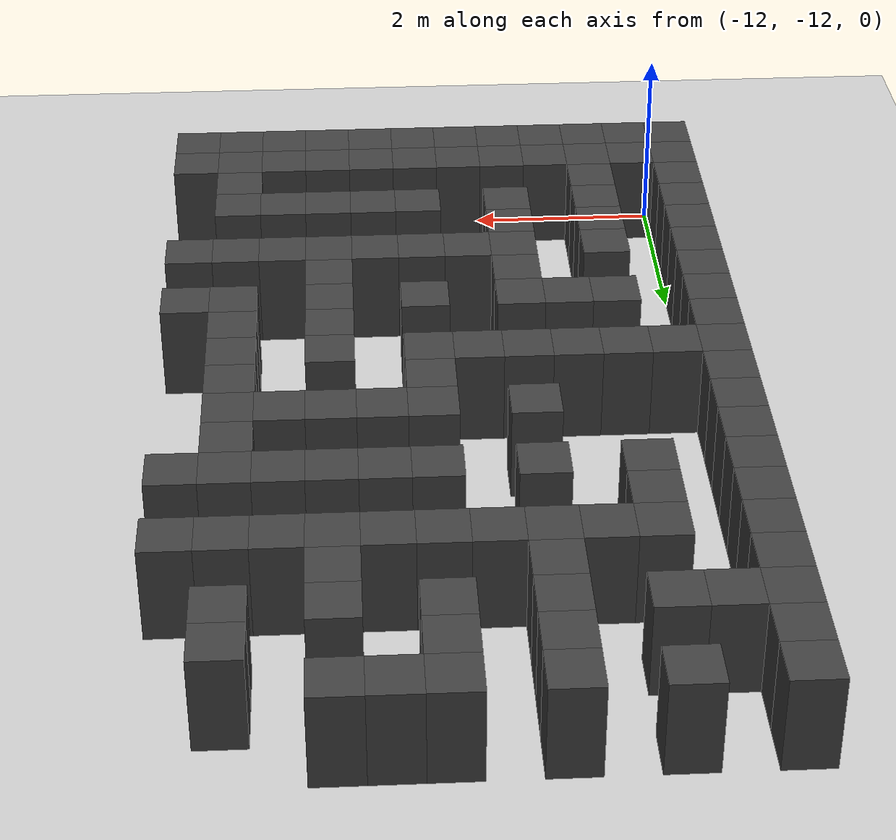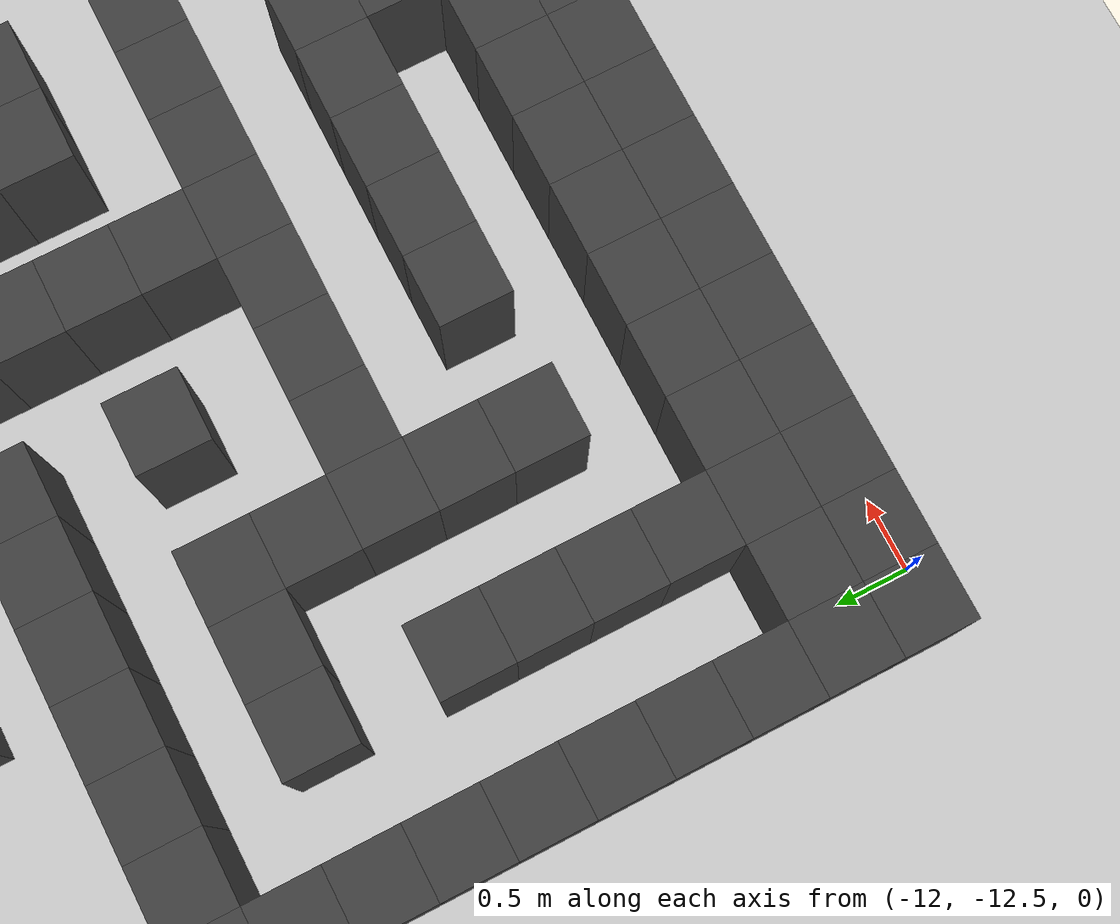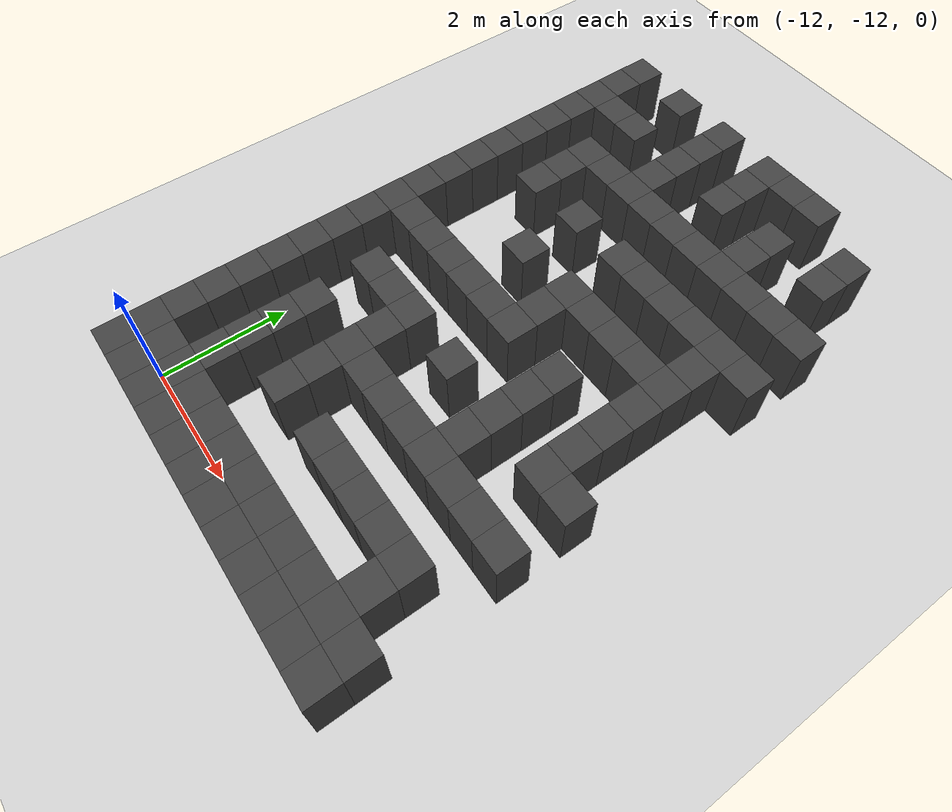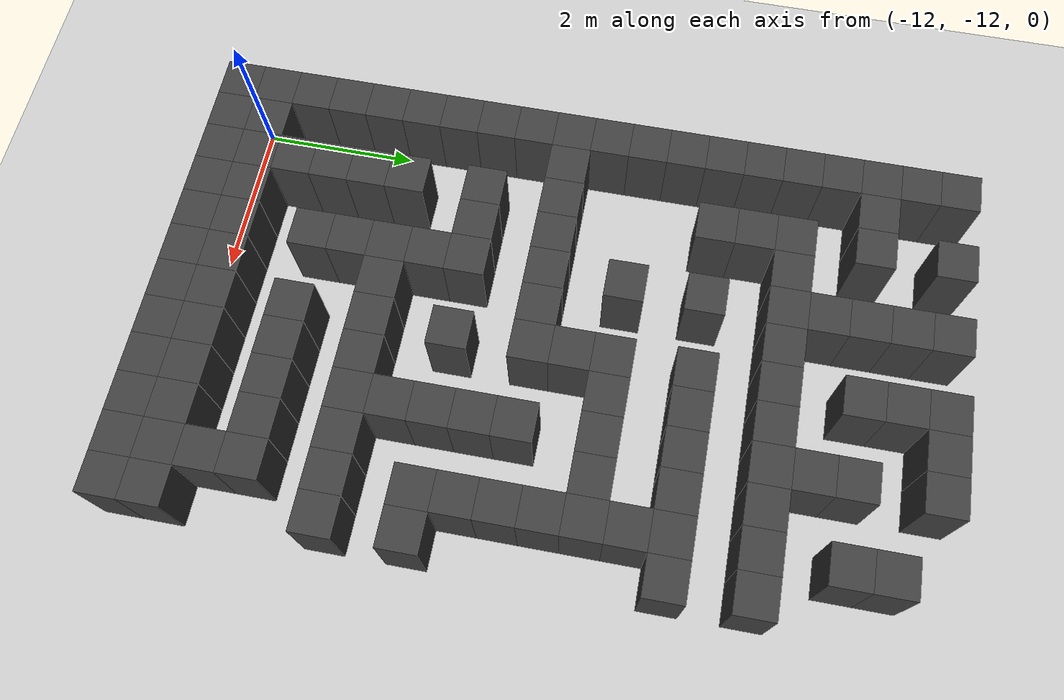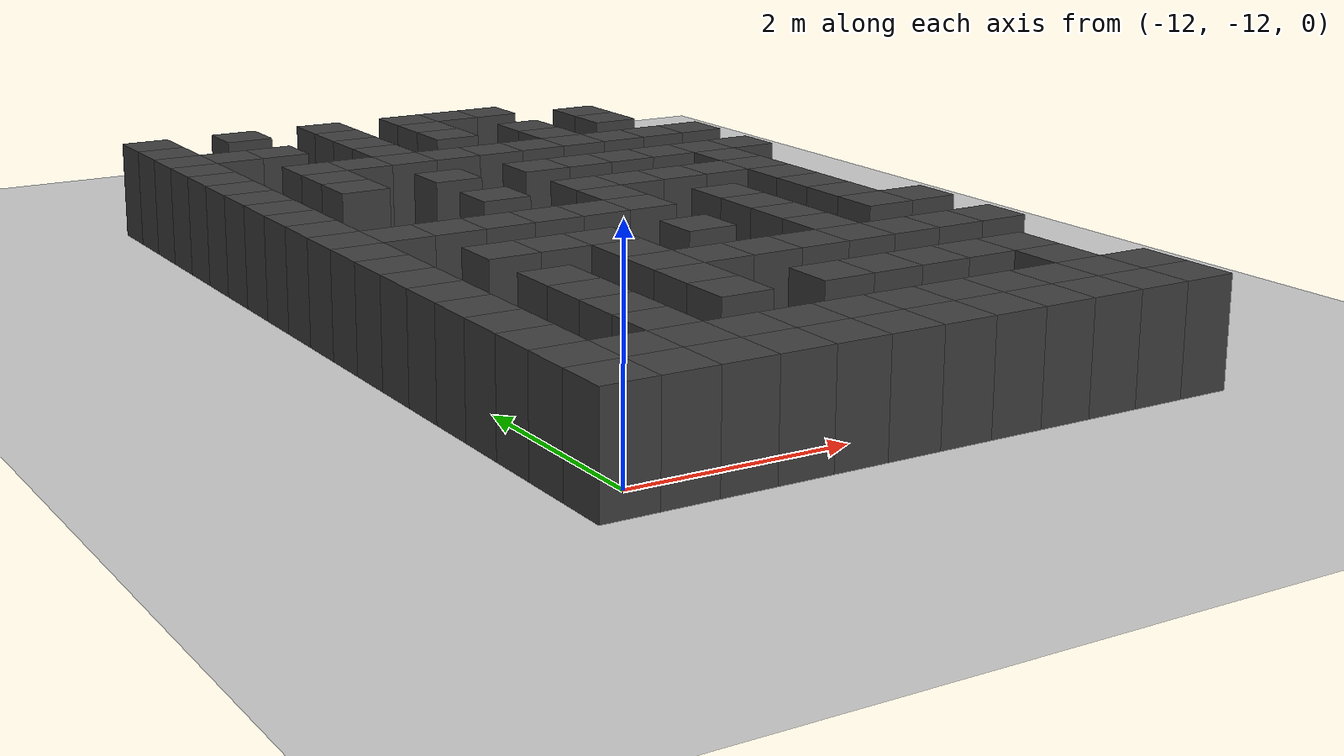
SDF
<sdf version="1.7">
 <world name="map_16884">
  <model name="ground_plane">
   <static>true</static>
   <link name="link">
    <collision name="collision">
     <geometry><plane><normal>0 0 1</normal><size>200 200</size></plane></geometry>
    </collision>
    <visual name="visual">
     <geometry><plane><normal>0 0 1</normal><size>200 200</size></plane></geometry>
     <material><ambient>0.8 0.8 0.8 1</ambient><diffuse>0.8 0.8 0.8 1</diffuse></material>
    </visual>
   </link>
  </model>
  <model name="maze_environment">
   <static>true</static>
   <link name="wall_724">
    <pose>-12.250 -2.750 0.500 0 0 0</pose>
    <collision name="col"><geometry><box><size>0.5 0.5 1.0</size></box></geometry></collision>
    <visual name="vis">
     <geometry><box><size>0.5 0.5 1.0</size></box></geometry>
     <material><ambient>0.15 0.15 0.15 1</ambient><diffuse>0.25 0.25 0.25 1</diffuse></material>
    </visual>
   </link>
   <link name="wall_725">
    <pose>-11.250 -2.750 0.500 0 0 0</pose>
    <collision name="col"><geometry><box><size>0.5 0.5 1.0</size></box></geometry></collision>
    <visual name="vis">
     <geometry><box><size>0.5 0.5 1.0</size></box></geometry>
     <material><ambient>0.15 0.15 0.15 1</ambient><diffuse>0.25 0.25 0.25 1</diffuse></material>
    </visual>
   </link>
   <link name="wall_726">
    <pose>-10.250 -2.750 0.500 0 0 0</pose>
    <collision name="col"><geometry><box><size>0.5 0.5 1.0</size></box></geometry></collision>
    <visual name="vis">
     <geometry><box><size>0.5 0.5 1.0</size></box></geometry>
     <material><ambient>0.15 0.15 0.15 1</ambient><diffuse>0.25 0.25 0.25 1</diffuse></material>
    </visual>
   </link>
   <link name="wall_727">
    <pose>-9.250 -2.750 0.500 0 0 0</pose>
    <collision name="col"><geometry><box><size>0.5 0.5 1.0</size></box></geometry></collision>
    <visual name="vis">
     <geometry><box><size>0.5 0.5 1.0</size></box></geometry>
     <material><ambient>0.15 0.15 0.15 1</ambient><diffuse>0.25 0.25 0.25 1</diffuse></material>
    </visual>
   </link>
   <link name="wall_728">
    <pose>-8.750 -2.750 0.500 0 0 0</pose>
    <collision name="col"><geometry><box><size>0.5 0.5 1.0</size></box></geometry></collision>
    <visual name="vis">
     <geometry><box><size>0.5 0.5 1.0</size></box></geometry>
     <material><ambient>0.15 0.15 0.15 1</ambient><diffuse>0.25 0.25 0.25 1</diffuse></material>
    </visual>
   </link>
   <link name="wall_729">
    <pose>-8.250 -2.750 0.500 0 0 0</pose>
    <collision name="col"><geometry><box><size>0.5 0.5 1.0</size></box></geometry></collision>
    <visual name="vis">
     <geometry><box><size>0.5 0.5 1.0</size></box></geometry>
     <material><ambient>0.15 0.15 0.15 1</ambient><diffuse>0.25 0.25 0.25 1</diffuse></material>
    </visual>
   </link>
   <link name="wall_760">
    <pose>-12.250 -3.250 0.500 0 0 0</pose>
    <collision name="col"><geometry><box><size>0.5 0.5 1.0</size></box></geometry></collision>
    <visual name="vis">
     <geometry><box><size>0.5 0.5 1.0</size></box></geometry>
     <material><ambient>0.15 0.15 0.15 1</ambient><diffuse>0.25 0.25 0.25 1</diffuse></material>
    </visual>
   </link>
   <link name="wall_761">
    <pose>-10.250 -3.250 0.500 0 0 0</pose>
    <collision name="col"><geometry><box><size>0.5 0.5 1.0</size></box></geometry></collision>
    <visual name="vis">
     <geometry><box><size>0.5 0.5 1.0</size></box></geometry>
     <material><ambient>0.15 0.15 0.15 1</ambient><diffuse>0.25 0.25 0.25 1</diffuse></material>
    </visual>
   </link>
   <link name="wall_762">
    <pose>-9.250 -3.250 0.500 0 0 0</pose>
    <collision name="col"><geometry><box><size>0.5 0.5 1.0</size></box></geometry></collision>
    <visual name="vis">
     <geometry><box><size>0.5 0.5 1.0</size></box></geometry>
     <material><ambient>0.15 0.15 0.15 1</ambient><diffuse>0.25 0.25 0.25 1</diffuse></material>
    </visual>
   </link>
   <link name="wall_763">
    <pose>-7.250 -3.250 0.500 0 0 0</pose>
    <collision name="col"><geometry><box><size>0.5 0.5 1.0</size></box></geometry></collision>
    <visual name="vis">
     <geometry><box><size>0.5 0.5 1.0</size></box></geometry>
     <material><ambient>0.15 0.15 0.15 1</ambient><diffuse>0.25 0.25 0.25 1</diffuse></material>
    </visual>
   </link>
   <link name="wall_774">
    <pose>-12.250 -3.750 0.500 0 0 0</pose>
    <collision name="col"><geometry><box><size>0.5 0.5 1.0</size></box></geometry></collision>
    <visual name="vis">
     <geometry><box><size>0.5 0.5 1.0</size></box></geometry>
     <material><ambient>0.15 0.15 0.15 1</ambient><diffuse>0.25 0.25 0.25 1</diffuse></material>
    </visual>
   </link>
   <link name="wall_775">
    <pose>-11.750 -3.750 0.500 0 0 0</pose>
    <collision name="col"><geometry><box><size>0.5 0.5 1.0</size></box></geometry></collision>
    <visual name="vis">
     <geometry><box><size>0.5 0.5 1.0</size></box></geometry>
     <material><ambient>0.15 0.15 0.15 1</ambient><diffuse>0.25 0.25 0.25 1</diffuse></material>
    </visual>
   </link>
   <link name="wall_776">
    <pose>-11.250 -3.750 0.500 0 0 0</pose>
    <collision name="col"><geometry><box><size>0.5 0.5 1.0</size></box></geometry></collision>
    <visual name="vis">
     <geometry><box><size>0.5 0.5 1.0</size></box></geometry>
     <material><ambient>0.15 0.15 0.15 1</ambient><diffuse>0.25 0.25 0.25 1</diffuse></material>
    </visual>
   </link>
   <link name="wall_777">
    <pose>-10.250 -3.750 0.500 0 0 0</pose>
    <collision name="col"><geometry><box><size>0.5 0.5 1.0</size></box></geometry></collision>
    <visual name="vis">
     <geometry><box><size>0.5 0.5 1.0</size></box></geometry>
     <material><ambient>0.15 0.15 0.15 1</ambient><diffuse>0.25 0.25 0.25 1</diffuse></material>
    </visual>
   </link>
   <link name="wall_778">
    <pose>-9.250 -3.750 0.500 0 0 0</pose>
    <collision name="col"><geometry><box><size>0.5 0.5 1.0</size></box></geometry></collision>
    <visual name="vis">
     <geometry><box><size>0.5 0.5 1.0</size></box></geometry>
     <material><ambient>0.15 0.15 0.15 1</ambient><diffuse>0.25 0.25 0.25 1</diffuse></material>
    </visual>
   </link>
   <link name="wall_779">
    <pose>-8.250 -3.750 0.500 0 0 0</pose>
    <collision name="col"><geometry><box><size>0.5 0.5 1.0</size></box></geometry></collision>
    <visual name="vis">
     <geometry><box><size>0.5 0.5 1.0</size></box></geometry>
     <material><ambient>0.15 0.15 0.15 1</ambient><diffuse>0.25 0.25 0.25 1</diffuse></material>
    </visual>
   </link>
   <link name="wall_780">
    <pose>-7.250 -3.750 0.500 0 0 0</pose>
    <collision name="col"><geometry><box><size>0.5 0.5 1.0</size></box></geometry></collision>
    <visual name="vis">
     <geometry><box><size>0.5 0.5 1.0</size></box></geometry>
     <material><ambient>0.15 0.15 0.15 1</ambient><diffuse>0.25 0.25 0.25 1</diffuse></material>
    </visual>
   </link>
   <link name="wall_807">
    <pose>-12.250 -4.250 0.500 0 0 0</pose>
    <collision name="col"><geometry><box><size>0.5 0.5 1.0</size></box></geometry></collision>
    <visual name="vis">
     <geometry><box><size>0.5 0.5 1.0</size></box></geometry>
     <material><ambient>0.15 0.15 0.15 1</ambient><diffuse>0.25 0.25 0.25 1</diffuse></material>
    </visual>
   </link>
   <link name="wall_808">
    <pose>-10.250 -4.250 0.500 0 0 0</pose>
    <collision name="col"><geometry><box><size>0.5 0.5 1.0</size></box></geometry></collision>
    <visual name="vis">
     <geometry><box><size>0.5 0.5 1.0</size></box></geometry>
     <material><ambient>0.15 0.15 0.15 1</ambient><diffuse>0.25 0.25 0.25 1</diffuse></material>
    </visual>
   </link>
   <link name="wall_809">
    <pose>-8.250 -4.250 0.500 0 0 0</pose>
    <collision name="col"><geometry><box><size>0.5 0.5 1.0</size></box></geometry></collision>
    <visual name="vis">
     <geometry><box><size>0.5 0.5 1.0</size></box></geometry>
     <material><ambient>0.15 0.15 0.15 1</ambient><diffuse>0.25 0.25 0.25 1</diffuse></material>
    </visual>
   </link>
   <link name="wall_819">
    <pose>-12.250 -4.750 0.500 0 0 0</pose>
    <collision name="col"><geometry><box><size>0.5 0.5 1.0</size></box></geometry></collision>
    <visual name="vis">
     <geometry><box><size>0.5 0.5 1.0</size></box></geometry>
     <material><ambient>0.15 0.15 0.15 1</ambient><diffuse>0.25 0.25 0.25 1</diffuse></material>
    </visual>
   </link>
   <link name="wall_820">
    <pose>-11.250 -4.750 0.500 0 0 0</pose>
    <collision name="col"><geometry><box><size>0.5 0.5 1.0</size></box></geometry></collision>
    <visual name="vis">
     <geometry><box><size>0.5 0.5 1.0</size></box></geometry>
     <material><ambient>0.15 0.15 0.15 1</ambient><diffuse>0.25 0.25 0.25 1</diffuse></material>
    </visual>
   </link>
   <link name="wall_821">
    <pose>-10.750 -4.750 0.500 0 0 0</pose>
    <collision name="col"><geometry><box><size>0.5 0.5 1.0</size></box></geometry></collision>
    <visual name="vis">
     <geometry><box><size>0.5 0.5 1.0</size></box></geometry>
     <material><ambient>0.15 0.15 0.15 1</ambient><diffuse>0.25 0.25 0.25 1</diffuse></material>
    </visual>
   </link>
   <link name="wall_822">
    <pose>-10.250 -4.750 0.500 0 0 0</pose>
    <collision name="col"><geometry><box><size>0.5 0.5 1.0</size></box></geometry></collision>
    <visual name="vis">
     <geometry><box><size>0.5 0.5 1.0</size></box></geometry>
     <material><ambient>0.15 0.15 0.15 1</ambient><diffuse>0.25 0.25 0.25 1</diffuse></material>
    </visual>
   </link>
   <link name="wall_823">
    <pose>-9.750 -4.750 0.500 0 0 0</pose>
    <collision name="col"><geometry><box><size>0.5 0.5 1.0</size></box></geometry></collision>
    <visual name="vis">
     <geometry><box><size>0.5 0.5 1.0</size></box></geometry>
     <material><ambient>0.15 0.15 0.15 1</ambient><diffuse>0.25 0.25 0.25 1</diffuse></material>
    </visual>
   </link>
   <link name="wall_824">
    <pose>-9.250 -4.750 0.500 0 0 0</pose>
    <collision name="col"><geometry><box><size>0.5 0.5 1.0</size></box></geometry></collision>
    <visual name="vis">
     <geometry><box><size>0.5 0.5 1.0</size></box></geometry>
     <material><ambient>0.15 0.15 0.15 1</ambient><diffuse>0.25 0.25 0.25 1</diffuse></material>
    </visual>
   </link>
   <link name="wall_825">
    <pose>-8.750 -4.750 0.500 0 0 0</pose>
    <collision name="col"><geometry><box><size>0.5 0.5 1.0</size></box></geometry></collision>
    <visual name="vis">
     <geometry><box><size>0.5 0.5 1.0</size></box></geometry>
     <material><ambient>0.15 0.15 0.15 1</ambient><diffuse>0.25 0.25 0.25 1</diffuse></material>
    </visual>
   </link>
   <link name="wall_826">
    <pose>-8.250 -4.750 0.500 0 0 0</pose>
    <collision name="col"><geometry><box><size>0.5 0.5 1.0</size></box></geometry></collision>
    <visual name="vis">
     <geometry><box><size>0.5 0.5 1.0</size></box></geometry>
     <material><ambient>0.15 0.15 0.15 1</ambient><diffuse>0.25 0.25 0.25 1</diffuse></material>
    </visual>
   </link>
   <link name="wall_827">
    <pose>-7.750 -4.750 0.500 0 0 0</pose>
    <collision name="col"><geometry><box><size>0.5 0.5 1.0</size></box></geometry></collision>
    <visual name="vis">
     <geometry><box><size>0.5 0.5 1.0</size></box></geometry>
     <material><ambient>0.15 0.15 0.15 1</ambient><diffuse>0.25 0.25 0.25 1</diffuse></material>
    </visual>
   </link>
   <link name="wall_828">
    <pose>-7.250 -4.750 0.500 0 0 0</pose>
    <collision name="col"><geometry><box><size>0.5 0.5 1.0</size></box></geometry></collision>
    <visual name="vis">
     <geometry><box><size>0.5 0.5 1.0</size></box></geometry>
     <material><ambient>0.15 0.15 0.15 1</ambient><diffuse>0.25 0.25 0.25 1</diffuse></material>
    </visual>
   </link>
   <link name="wall_829">
    <pose>-6.750 -4.750 0.500 0 0 0</pose>
    <collision name="col"><geometry><box><size>0.5 0.5 1.0</size></box></geometry></collision>
    <visual name="vis">
     <geometry><box><size>0.5 0.5 1.0</size></box></geometry>
     <material><ambient>0.15 0.15 0.15 1</ambient><diffuse>0.25 0.25 0.25 1</diffuse></material>
    </visual>
   </link>
   <link name="wall_860">
    <pose>-12.250 -5.250 0.500 0 0 0</pose>
    <collision name="col"><geometry><box><size>0.5 0.5 1.0</size></box></geometry></collision>
    <visual name="vis">
     <geometry><box><size>0.5 0.5 1.0</size></box></geometry>
     <material><ambient>0.15 0.15 0.15 1</ambient><diffuse>0.25 0.25 0.25 1</diffuse></material>
    </visual>
   </link>
   <link name="wall_861">
    <pose>-11.250 -5.250 0.500 0 0 0</pose>
    <collision name="col"><geometry><box><size>0.5 0.5 1.0</size></box></geometry></collision>
    <visual name="vis">
     <geometry><box><size>0.5 0.5 1.0</size></box></geometry>
     <material><ambient>0.15 0.15 0.15 1</ambient><diffuse>0.25 0.25 0.25 1</diffuse></material>
    </visual>
   </link>
   <link name="wall_871">
    <pose>-12.250 -5.750 0.500 0 0 0</pose>
    <collision name="col"><geometry><box><size>0.5 0.5 1.0</size></box></geometry></collision>
    <visual name="vis">
     <geometry><box><size>0.5 0.5 1.0</size></box></geometry>
     <material><ambient>0.15 0.15 0.15 1</ambient><diffuse>0.25 0.25 0.25 1</diffuse></material>
    </visual>
   </link>
   <link name="wall_872">
    <pose>-11.250 -5.750 0.500 0 0 0</pose>
    <collision name="col"><geometry><box><size>0.5 0.5 1.0</size></box></geometry></collision>
    <visual name="vis">
     <geometry><box><size>0.5 0.5 1.0</size></box></geometry>
     <material><ambient>0.15 0.15 0.15 1</ambient><diffuse>0.25 0.25 0.25 1</diffuse></material>
    </visual>
   </link>
   <link name="wall_873">
    <pose>-10.250 -5.750 0.500 0 0 0</pose>
    <collision name="col"><geometry><box><size>0.5 0.5 1.0</size></box></geometry></collision>
    <visual name="vis">
     <geometry><box><size>0.5 0.5 1.0</size></box></geometry>
     <material><ambient>0.15 0.15 0.15 1</ambient><diffuse>0.25 0.25 0.25 1</diffuse></material>
    </visual>
   </link>
   <link name="wall_874">
    <pose>-9.250 -5.750 0.500 0 0 0</pose>
    <collision name="col"><geometry><box><size>0.5 0.5 1.0</size></box></geometry></collision>
    <visual name="vis">
     <geometry><box><size>0.5 0.5 1.0</size></box></geometry>
     <material><ambient>0.15 0.15 0.15 1</ambient><diffuse>0.25 0.25 0.25 1</diffuse></material>
    </visual>
   </link>
   <link name="wall_875">
    <pose>-8.750 -5.750 0.500 0 0 0</pose>
    <collision name="col"><geometry><box><size>0.5 0.5 1.0</size></box></geometry></collision>
    <visual name="vis">
     <geometry><box><size>0.5 0.5 1.0</size></box></geometry>
     <material><ambient>0.15 0.15 0.15 1</ambient><diffuse>0.25 0.25 0.25 1</diffuse></material>
    </visual>
   </link>
   <link name="wall_876">
    <pose>-8.250 -5.750 0.500 0 0 0</pose>
    <collision name="col"><geometry><box><size>0.5 0.5 1.0</size></box></geometry></collision>
    <visual name="vis">
     <geometry><box><size>0.5 0.5 1.0</size></box></geometry>
     <material><ambient>0.15 0.15 0.15 1</ambient><diffuse>0.25 0.25 0.25 1</diffuse></material>
    </visual>
   </link>
   <link name="wall_877">
    <pose>-7.750 -5.750 0.500 0 0 0</pose>
    <collision name="col"><geometry><box><size>0.5 0.5 1.0</size></box></geometry></collision>
    <visual name="vis">
     <geometry><box><size>0.5 0.5 1.0</size></box></geometry>
     <material><ambient>0.15 0.15 0.15 1</ambient><diffuse>0.25 0.25 0.25 1</diffuse></material>
    </visual>
   </link>
   <link name="wall_878">
    <pose>-7.250 -5.750 0.500 0 0 0</pose>
    <collision name="col"><geometry><box><size>0.5 0.5 1.0</size></box></geometry></collision>
    <visual name="vis">
     <geometry><box><size>0.5 0.5 1.0</size></box></geometry>
     <material><ambient>0.15 0.15 0.15 1</ambient><diffuse>0.25 0.25 0.25 1</diffuse></material>
    </visual>
   </link>
   <link name="wall_879">
    <pose>-6.750 -5.750 0.500 0 0 0</pose>
    <collision name="col"><geometry><box><size>0.5 0.5 1.0</size></box></geometry></collision>
    <visual name="vis">
     <geometry><box><size>0.5 0.5 1.0</size></box></geometry>
     <material><ambient>0.15 0.15 0.15 1</ambient><diffuse>0.25 0.25 0.25 1</diffuse></material>
    </visual>
   </link>
   <link name="wall_906">
    <pose>-12.250 -6.250 0.500 0 0 0</pose>
    <collision name="col"><geometry><box><size>0.5 0.5 1.0</size></box></geometry></collision>
    <visual name="vis">
     <geometry><box><size>0.5 0.5 1.0</size></box></geometry>
     <material><ambient>0.15 0.15 0.15 1</ambient><diffuse>0.25 0.25 0.25 1</diffuse></material>
    </visual>
   </link>
   <link name="wall_907">
    <pose>-7.250 -6.250 0.500 0 0 0</pose>
    <collision name="col"><geometry><box><size>0.5 0.5 1.0</size></box></geometry></collision>
    <visual name="vis">
     <geometry><box><size>0.5 0.5 1.0</size></box></geometry>
     <material><ambient>0.15 0.15 0.15 1</ambient><diffuse>0.25 0.25 0.25 1</diffuse></material>
    </visual>
   </link>
   <link name="wall_921">
    <pose>-12.250 -6.750 0.500 0 0 0</pose>
    <collision name="col"><geometry><box><size>0.5 0.5 1.0</size></box></geometry></collision>
    <visual name="vis">
     <geometry><box><size>0.5 0.5 1.0</size></box></geometry>
     <material><ambient>0.15 0.15 0.15 1</ambient><diffuse>0.25 0.25 0.25 1</diffuse></material>
    </visual>
   </link>
   <link name="wall_922">
    <pose>-10.250 -6.750 0.500 0 0 0</pose>
    <collision name="col"><geometry><box><size>0.5 0.5 1.0</size></box></geometry></collision>
    <visual name="vis">
     <geometry><box><size>0.5 0.5 1.0</size></box></geometry>
     <material><ambient>0.15 0.15 0.15 1</ambient><diffuse>0.25 0.25 0.25 1</diffuse></material>
    </visual>
   </link>
   <link name="wall_923">
    <pose>-9.250 -6.750 0.500 0 0 0</pose>
    <collision name="col"><geometry><box><size>0.5 0.5 1.0</size></box></geometry></collision>
    <visual name="vis">
     <geometry><box><size>0.5 0.5 1.0</size></box></geometry>
     <material><ambient>0.15 0.15 0.15 1</ambient><diffuse>0.25 0.25 0.25 1</diffuse></material>
    </visual>
   </link>
   <link name="wall_924">
    <pose>-8.750 -6.750 0.500 0 0 0</pose>
    <collision name="col"><geometry><box><size>0.5 0.5 1.0</size></box></geometry></collision>
    <visual name="vis">
     <geometry><box><size>0.5 0.5 1.0</size></box></geometry>
     <material><ambient>0.15 0.15 0.15 1</ambient><diffuse>0.25 0.25 0.25 1</diffuse></material>
    </visual>
   </link>
   <link name="wall_925">
    <pose>-8.250 -6.750 0.500 0 0 0</pose>
    <collision name="col"><geometry><box><size>0.5 0.5 1.0</size></box></geometry></collision>
    <visual name="vis">
     <geometry><box><size>0.5 0.5 1.0</size></box></geometry>
     <material><ambient>0.15 0.15 0.15 1</ambient><diffuse>0.25 0.25 0.25 1</diffuse></material>
    </visual>
   </link>
   <link name="wall_926">
    <pose>-7.750 -6.750 0.500 0 0 0</pose>
    <collision name="col"><geometry><box><size>0.5 0.5 1.0</size></box></geometry></collision>
    <visual name="vis">
     <geometry><box><size>0.5 0.5 1.0</size></box></geometry>
     <material><ambient>0.15 0.15 0.15 1</ambient><diffuse>0.25 0.25 0.25 1</diffuse></material>
    </visual>
   </link>
   <link name="wall_927">
    <pose>-7.250 -6.750 0.500 0 0 0</pose>
    <collision name="col"><geometry><box><size>0.5 0.5 1.0</size></box></geometry></collision>
    <visual name="vis">
     <geometry><box><size>0.5 0.5 1.0</size></box></geometry>
     <material><ambient>0.15 0.15 0.15 1</ambient><diffuse>0.25 0.25 0.25 1</diffuse></material>
    </visual>
   </link>
   <link name="wall_953">
    <pose>-12.250 -7.250 0.500 0 0 0</pose>
    <collision name="col"><geometry><box><size>0.5 0.5 1.0</size></box></geometry></collision>
    <visual name="vis">
     <geometry><box><size>0.5 0.5 1.0</size></box></geometry>
     <material><ambient>0.15 0.15 0.15 1</ambient><diffuse>0.25 0.25 0.25 1</diffuse></material>
    </visual>
   </link>
   <link name="wall_954">
    <pose>-9.250 -7.250 0.500 0 0 0</pose>
    <collision name="col"><geometry><box><size>0.5 0.5 1.0</size></box></geometry></collision>
    <visual name="vis">
     <geometry><box><size>0.5 0.5 1.0</size></box></geometry>
     <material><ambient>0.15 0.15 0.15 1</ambient><diffuse>0.25 0.25 0.25 1</diffuse></material>
    </visual>
   </link>
   <link name="wall_955">
    <pose>-7.250 -7.250 0.500 0 0 0</pose>
    <collision name="col"><geometry><box><size>0.5 0.5 1.0</size></box></geometry></collision>
    <visual name="vis">
     <geometry><box><size>0.5 0.5 1.0</size></box></geometry>
     <material><ambient>0.15 0.15 0.15 1</ambient><diffuse>0.25 0.25 0.25 1</diffuse></material>
    </visual>
   </link>
   <link name="wall_967">
    <pose>-12.250 -7.750 0.500 0 0 0</pose>
    <collision name="col"><geometry><box><size>0.5 0.5 1.0</size></box></geometry></collision>
    <visual name="vis">
     <geometry><box><size>0.5 0.5 1.0</size></box></geometry>
     <material><ambient>0.15 0.15 0.15 1</ambient><diffuse>0.25 0.25 0.25 1</diffuse></material>
    </visual>
   </link>
   <link name="wall_968">
    <pose>-11.750 -7.750 0.500 0 0 0</pose>
    <collision name="col"><geometry><box><size>0.5 0.5 1.0</size></box></geometry></collision>
    <visual name="vis">
     <geometry><box><size>0.5 0.5 1.0</size></box></geometry>
     <material><ambient>0.15 0.15 0.15 1</ambient><diffuse>0.25 0.25 0.25 1</diffuse></material>
    </visual>
   </link>
   <link name="wall_969">
    <pose>-11.250 -7.750 0.500 0 0 0</pose>
    <collision name="col"><geometry><box><size>0.5 0.5 1.0</size></box></geometry></collision>
    <visual name="vis">
     <geometry><box><size>0.5 0.5 1.0</size></box></geometry>
     <material><ambient>0.15 0.15 0.15 1</ambient><diffuse>0.25 0.25 0.25 1</diffuse></material>
    </visual>
   </link>
   <link name="wall_970">
    <pose>-10.750 -7.750 0.500 0 0 0</pose>
    <collision name="col"><geometry><box><size>0.5 0.5 1.0</size></box></geometry></collision>
    <visual name="vis">
     <geometry><box><size>0.5 0.5 1.0</size></box></geometry>
     <material><ambient>0.15 0.15 0.15 1</ambient><diffuse>0.25 0.25 0.25 1</diffuse></material>
    </visual>
   </link>
   <link name="wall_971">
    <pose>-10.250 -7.750 0.500 0 0 0</pose>
    <collision name="col"><geometry><box><size>0.5 0.5 1.0</size></box></geometry></collision>
    <visual name="vis">
     <geometry><box><size>0.5 0.5 1.0</size></box></geometry>
     <material><ambient>0.15 0.15 0.15 1</ambient><diffuse>0.25 0.25 0.25 1</diffuse></material>
    </visual>
   </link>
   <link name="wall_972">
    <pose>-9.750 -7.750 0.500 0 0 0</pose>
    <collision name="col"><geometry><box><size>0.5 0.5 1.0</size></box></geometry></collision>
    <visual name="vis">
     <geometry><box><size>0.5 0.5 1.0</size></box></geometry>
     <material><ambient>0.15 0.15 0.15 1</ambient><diffuse>0.25 0.25 0.25 1</diffuse></material>
    </visual>
   </link>
   <link name="wall_973">
    <pose>-9.250 -7.750 0.500 0 0 0</pose>
    <collision name="col"><geometry><box><size>0.5 0.5 1.0</size></box></geometry></collision>
    <visual name="vis">
     <geometry><box><size>0.5 0.5 1.0</size></box></geometry>
     <material><ambient>0.15 0.15 0.15 1</ambient><diffuse>0.25 0.25 0.25 1</diffuse></material>
    </visual>
   </link>
   <link name="wall_974">
    <pose>-8.250 -7.750 0.500 0 0 0</pose>
    <collision name="col"><geometry><box><size>0.5 0.5 1.0</size></box></geometry></collision>
    <visual name="vis">
     <geometry><box><size>0.5 0.5 1.0</size></box></geometry>
     <material><ambient>0.15 0.15 0.15 1</ambient><diffuse>0.25 0.25 0.25 1</diffuse></material>
    </visual>
   </link>
   <link name="wall_975">
    <pose>-7.250 -7.750 0.500 0 0 0</pose>
    <collision name="col"><geometry><box><size>0.5 0.5 1.0</size></box></geometry></collision>
    <visual name="vis">
     <geometry><box><size>0.5 0.5 1.0</size></box></geometry>
     <material><ambient>0.15 0.15 0.15 1</ambient><diffuse>0.25 0.25 0.25 1</diffuse></material>
    </visual>
   </link>
   <link name="wall_1003">
    <pose>-12.250 -8.250 0.500 0 0 0</pose>
    <collision name="col"><geometry><box><size>0.5 0.5 1.0</size></box></geometry></collision>
    <visual name="vis">
     <geometry><box><size>0.5 0.5 1.0</size></box></geometry>
     <material><ambient>0.15 0.15 0.15 1</ambient><diffuse>0.25 0.25 0.25 1</diffuse></material>
    </visual>
   </link>
   <link name="wall_1004">
    <pose>-8.250 -8.250 0.500 0 0 0</pose>
    <collision name="col"><geometry><box><size>0.5 0.5 1.0</size></box></geometry></collision>
    <visual name="vis">
     <geometry><box><size>0.5 0.5 1.0</size></box></geometry>
     <material><ambient>0.15 0.15 0.15 1</ambient><diffuse>0.25 0.25 0.25 1</diffuse></material>
    </visual>
   </link>
   <link name="wall_1005">
    <pose>-7.250 -8.250 0.500 0 0 0</pose>
    <collision name="col"><geometry><box><size>0.5 0.5 1.0</size></box></geometry></collision>
    <visual name="vis">
     <geometry><box><size>0.5 0.5 1.0</size></box></geometry>
     <material><ambient>0.15 0.15 0.15 1</ambient><diffuse>0.25 0.25 0.25 1</diffuse></material>
    </visual>
   </link>
   <link name="wall_1015">
    <pose>-12.250 -8.750 0.500 0 0 0</pose>
    <collision name="col"><geometry><box><size>0.5 0.5 1.0</size></box></geometry></collision>
    <visual name="vis">
     <geometry><box><size>0.5 0.5 1.0</size></box></geometry>
     <material><ambient>0.15 0.15 0.15 1</ambient><diffuse>0.25 0.25 0.25 1</diffuse></material>
    </visual>
   </link>
   <link name="wall_1016">
    <pose>-11.250 -8.750 0.500 0 0 0</pose>
    <collision name="col"><geometry><box><size>0.5 0.5 1.0</size></box></geometry></collision>
    <visual name="vis">
     <geometry><box><size>0.5 0.5 1.0</size></box></geometry>
     <material><ambient>0.15 0.15 0.15 1</ambient><diffuse>0.25 0.25 0.25 1</diffuse></material>
    </visual>
   </link>
   <link name="wall_1017">
    <pose>-10.750 -8.750 0.500 0 0 0</pose>
    <collision name="col"><geometry><box><size>0.5 0.5 1.0</size></box></geometry></collision>
    <visual name="vis">
     <geometry><box><size>0.5 0.5 1.0</size></box></geometry>
     <material><ambient>0.15 0.15 0.15 1</ambient><diffuse>0.25 0.25 0.25 1</diffuse></material>
    </visual>
   </link>
   <link name="wall_1018">
    <pose>-10.250 -8.750 0.500 0 0 0</pose>
    <collision name="col"><geometry><box><size>0.5 0.5 1.0</size></box></geometry></collision>
    <visual name="vis">
     <geometry><box><size>0.5 0.5 1.0</size></box></geometry>
     <material><ambient>0.15 0.15 0.15 1</ambient><diffuse>0.25 0.25 0.25 1</diffuse></material>
    </visual>
   </link>
   <link name="wall_1019">
    <pose>-9.250 -8.750 0.500 0 0 0</pose>
    <collision name="col"><geometry><box><size>0.5 0.5 1.0</size></box></geometry></collision>
    <visual name="vis">
     <geometry><box><size>0.5 0.5 1.0</size></box></geometry>
     <material><ambient>0.15 0.15 0.15 1</ambient><diffuse>0.25 0.25 0.25 1</diffuse></material>
    </visual>
   </link>
   <link name="wall_1020">
    <pose>-8.250 -8.750 0.500 0 0 0</pose>
    <collision name="col"><geometry><box><size>0.5 0.5 1.0</size></box></geometry></collision>
    <visual name="vis">
     <geometry><box><size>0.5 0.5 1.0</size></box></geometry>
     <material><ambient>0.15 0.15 0.15 1</ambient><diffuse>0.25 0.25 0.25 1</diffuse></material>
    </visual>
   </link>
   <link name="wall_1021">
    <pose>-7.250 -8.750 0.500 0 0 0</pose>
    <collision name="col"><geometry><box><size>0.5 0.5 1.0</size></box></geometry></collision>
    <visual name="vis">
     <geometry><box><size>0.5 0.5 1.0</size></box></geometry>
     <material><ambient>0.15 0.15 0.15 1</ambient><diffuse>0.25 0.25 0.25 1</diffuse></material>
    </visual>
   </link>
   <link name="wall_1022">
    <pose>-6.750 -8.750 0.500 0 0 0</pose>
    <collision name="col"><geometry><box><size>0.5 0.5 1.0</size></box></geometry></collision>
    <visual name="vis">
     <geometry><box><size>0.5 0.5 1.0</size></box></geometry>
     <material><ambient>0.15 0.15 0.15 1</ambient><diffuse>0.25 0.25 0.25 1</diffuse></material>
    </visual>
   </link>
   <link name="wall_1047">
    <pose>-12.250 -9.250 0.500 0 0 0</pose>
    <collision name="col"><geometry><box><size>0.5 0.5 1.0</size></box></geometry></collision>
    <visual name="vis">
     <geometry><box><size>0.5 0.5 1.0</size></box></geometry>
     <material><ambient>0.15 0.15 0.15 1</ambient><diffuse>0.25 0.25 0.25 1</diffuse></material>
    </visual>
   </link>
   <link name="wall_1048">
    <pose>-10.250 -9.250 0.500 0 0 0</pose>
    <collision name="col"><geometry><box><size>0.5 0.5 1.0</size></box></geometry></collision>
    <visual name="vis">
     <geometry><box><size>0.5 0.5 1.0</size></box></geometry>
     <material><ambient>0.15 0.15 0.15 1</ambient><diffuse>0.25 0.25 0.25 1</diffuse></material>
    </visual>
   </link>
   <link name="wall_1049">
    <pose>-8.250 -9.250 0.500 0 0 0</pose>
    <collision name="col"><geometry><box><size>0.5 0.5 1.0</size></box></geometry></collision>
    <visual name="vis">
     <geometry><box><size>0.5 0.5 1.0</size></box></geometry>
     <material><ambient>0.15 0.15 0.15 1</ambient><diffuse>0.25 0.25 0.25 1</diffuse></material>
    </visual>
   </link>
   <link name="wall_1064">
    <pose>-12.250 -9.750 0.500 0 0 0</pose>
    <collision name="col"><geometry><box><size>0.5 0.5 1.0</size></box></geometry></collision>
    <visual name="vis">
     <geometry><box><size>0.5 0.5 1.0</size></box></geometry>
     <material><ambient>0.15 0.15 0.15 1</ambient><diffuse>0.25 0.25 0.25 1</diffuse></material>
    </visual>
   </link>
   <link name="wall_1065">
    <pose>-11.250 -9.750 0.500 0 0 0</pose>
    <collision name="col"><geometry><box><size>0.5 0.5 1.0</size></box></geometry></collision>
    <visual name="vis">
     <geometry><box><size>0.5 0.5 1.0</size></box></geometry>
     <material><ambient>0.15 0.15 0.15 1</ambient><diffuse>0.25 0.25 0.25 1</diffuse></material>
    </visual>
   </link>
   <link name="wall_1066">
    <pose>-10.250 -9.750 0.500 0 0 0</pose>
    <collision name="col"><geometry><box><size>0.5 0.5 1.0</size></box></geometry></collision>
    <visual name="vis">
     <geometry><box><size>0.5 0.5 1.0</size></box></geometry>
     <material><ambient>0.15 0.15 0.15 1</ambient><diffuse>0.25 0.25 0.25 1</diffuse></material>
    </visual>
   </link>
   <link name="wall_1067">
    <pose>-9.750 -9.750 0.500 0 0 0</pose>
    <collision name="col"><geometry><box><size>0.5 0.5 1.0</size></box></geometry></collision>
    <visual name="vis">
     <geometry><box><size>0.5 0.5 1.0</size></box></geometry>
     <material><ambient>0.15 0.15 0.15 1</ambient><diffuse>0.25 0.25 0.25 1</diffuse></material>
    </visual>
   </link>
   <link name="wall_1068">
    <pose>-9.250 -9.750 0.500 0 0 0</pose>
    <collision name="col"><geometry><box><size>0.5 0.5 1.0</size></box></geometry></collision>
    <visual name="vis">
     <geometry><box><size>0.5 0.5 1.0</size></box></geometry>
     <material><ambient>0.15 0.15 0.15 1</ambient><diffuse>0.25 0.25 0.25 1</diffuse></material>
    </visual>
   </link>
   <link name="wall_1069">
    <pose>-8.750 -9.750 0.500 0 0 0</pose>
    <collision name="col"><geometry><box><size>0.5 0.5 1.0</size></box></geometry></collision>
    <visual name="vis">
     <geometry><box><size>0.5 0.5 1.0</size></box></geometry>
     <material><ambient>0.15 0.15 0.15 1</ambient><diffuse>0.25 0.25 0.25 1</diffuse></material>
    </visual>
   </link>
   <link name="wall_1070">
    <pose>-8.250 -9.750 0.500 0 0 0</pose>
    <collision name="col"><geometry><box><size>0.5 0.5 1.0</size></box></geometry></collision>
    <visual name="vis">
     <geometry><box><size>0.5 0.5 1.0</size></box></geometry>
     <material><ambient>0.15 0.15 0.15 1</ambient><diffuse>0.25 0.25 0.25 1</diffuse></material>
    </visual>
   </link>
   <link name="wall_1071">
    <pose>-7.750 -9.750 0.500 0 0 0</pose>
    <collision name="col"><geometry><box><size>0.5 0.5 1.0</size></box></geometry></collision>
    <visual name="vis">
     <geometry><box><size>0.5 0.5 1.0</size></box></geometry>
     <material><ambient>0.15 0.15 0.15 1</ambient><diffuse>0.25 0.25 0.25 1</diffuse></material>
    </visual>
   </link>
   <link name="wall_1072">
    <pose>-7.250 -9.750 0.500 0 0 0</pose>
    <collision name="col"><geometry><box><size>0.5 0.5 1.0</size></box></geometry></collision>
    <visual name="vis">
     <geometry><box><size>0.5 0.5 1.0</size></box></geometry>
     <material><ambient>0.15 0.15 0.15 1</ambient><diffuse>0.25 0.25 0.25 1</diffuse></material>
    </visual>
   </link>
   <link name="wall_1073">
    <pose>-6.750 -9.750 0.500 0 0 0</pose>
    <collision name="col"><geometry><box><size>0.5 0.5 1.0</size></box></geometry></collision>
    <visual name="vis">
     <geometry><box><size>0.5 0.5 1.0</size></box></geometry>
     <material><ambient>0.15 0.15 0.15 1</ambient><diffuse>0.25 0.25 0.25 1</diffuse></material>
    </visual>
   </link>
   <link name="wall_1100">
    <pose>-12.250 -10.250 0.500 0 0 0</pose>
    <collision name="col"><geometry><box><size>0.5 0.5 1.0</size></box></geometry></collision>
    <visual name="vis">
     <geometry><box><size>0.5 0.5 1.0</size></box></geometry>
     <material><ambient>0.15 0.15 0.15 1</ambient><diffuse>0.25 0.25 0.25 1</diffuse></material>
    </visual>
   </link>
   <link name="wall_1101">
    <pose>-11.250 -10.250 0.500 0 0 0</pose>
    <collision name="col"><geometry><box><size>0.5 0.5 1.0</size></box></geometry></collision>
    <visual name="vis">
     <geometry><box><size>0.5 0.5 1.0</size></box></geometry>
     <material><ambient>0.15 0.15 0.15 1</ambient><diffuse>0.25 0.25 0.25 1</diffuse></material>
    </visual>
   </link>
   <link name="wall_1102">
    <pose>-10.250 -10.250 0.500 0 0 0</pose>
    <collision name="col"><geometry><box><size>0.5 0.5 1.0</size></box></geometry></collision>
    <visual name="vis">
     <geometry><box><size>0.5 0.5 1.0</size></box></geometry>
     <material><ambient>0.15 0.15 0.15 1</ambient><diffuse>0.25 0.25 0.25 1</diffuse></material>
    </visual>
   </link>
   <link name="wall_1113">
    <pose>-12.250 -10.750 0.500 0 0 0</pose>
    <collision name="col"><geometry><box><size>0.5 0.5 1.0</size></box></geometry></collision>
    <visual name="vis">
     <geometry><box><size>0.5 0.5 1.0</size></box></geometry>
     <material><ambient>0.15 0.15 0.15 1</ambient><diffuse>0.25 0.25 0.25 1</diffuse></material>
    </visual>
   </link>
   <link name="wall_1114">
    <pose>-11.250 -10.750 0.500 0 0 0</pose>
    <collision name="col"><geometry><box><size>0.5 0.5 1.0</size></box></geometry></collision>
    <visual name="vis">
     <geometry><box><size>0.5 0.5 1.0</size></box></geometry>
     <material><ambient>0.15 0.15 0.15 1</ambient><diffuse>0.25 0.25 0.25 1</diffuse></material>
    </visual>
   </link>
   <link name="wall_1115">
    <pose>-10.250 -10.750 0.500 0 0 0</pose>
    <collision name="col"><geometry><box><size>0.5 0.5 1.0</size></box></geometry></collision>
    <visual name="vis">
     <geometry><box><size>0.5 0.5 1.0</size></box></geometry>
     <material><ambient>0.15 0.15 0.15 1</ambient><diffuse>0.25 0.25 0.25 1</diffuse></material>
    </visual>
   </link>
   <link name="wall_1116">
    <pose>-9.250 -10.750 0.500 0 0 0</pose>
    <collision name="col"><geometry><box><size>0.5 0.5 1.0</size></box></geometry></collision>
    <visual name="vis">
     <geometry><box><size>0.5 0.5 1.0</size></box></geometry>
     <material><ambient>0.15 0.15 0.15 1</ambient><diffuse>0.25 0.25 0.25 1</diffuse></material>
    </visual>
   </link>
   <link name="wall_1117">
    <pose>-8.750 -10.750 0.500 0 0 0</pose>
    <collision name="col"><geometry><box><size>0.5 0.5 1.0</size></box></geometry></collision>
    <visual name="vis">
     <geometry><box><size>0.5 0.5 1.0</size></box></geometry>
     <material><ambient>0.15 0.15 0.15 1</ambient><diffuse>0.25 0.25 0.25 1</diffuse></material>
    </visual>
   </link>
   <link name="wall_1118">
    <pose>-8.250 -10.750 0.500 0 0 0</pose>
    <collision name="col"><geometry><box><size>0.5 0.5 1.0</size></box></geometry></collision>
    <visual name="vis">
     <geometry><box><size>0.5 0.5 1.0</size></box></geometry>
     <material><ambient>0.15 0.15 0.15 1</ambient><diffuse>0.25 0.25 0.25 1</diffuse></material>
    </visual>
   </link>
   <link name="wall_1119">
    <pose>-7.750 -10.750 0.500 0 0 0</pose>
    <collision name="col"><geometry><box><size>0.5 0.5 1.0</size></box></geometry></collision>
    <visual name="vis">
     <geometry><box><size>0.5 0.5 1.0</size></box></geometry>
     <material><ambient>0.15 0.15 0.15 1</ambient><diffuse>0.25 0.25 0.25 1</diffuse></material>
    </visual>
   </link>
   <link name="wall_1120">
    <pose>-7.250 -10.750 0.500 0 0 0</pose>
    <collision name="col"><geometry><box><size>0.5 0.5 1.0</size></box></geometry></collision>
    <visual name="vis">
     <geometry><box><size>0.5 0.5 1.0</size></box></geometry>
     <material><ambient>0.15 0.15 0.15 1</ambient><diffuse>0.25 0.25 0.25 1</diffuse></material>
    </visual>
   </link>
   <link name="wall_1148">
    <pose>-12.250 -11.250 0.500 0 0 0</pose>
    <collision name="col"><geometry><box><size>0.5 0.5 1.0</size></box></geometry></collision>
    <visual name="vis">
     <geometry><box><size>0.5 0.5 1.0</size></box></geometry>
     <material><ambient>0.15 0.15 0.15 1</ambient><diffuse>0.25 0.25 0.25 1</diffuse></material>
    </visual>
   </link>
   <link name="wall_1149">
    <pose>-11.250 -11.250 0.500 0 0 0</pose>
    <collision name="col"><geometry><box><size>0.5 0.5 1.0</size></box></geometry></collision>
    <visual name="vis">
     <geometry><box><size>0.5 0.5 1.0</size></box></geometry>
     <material><ambient>0.15 0.15 0.15 1</ambient><diffuse>0.25 0.25 0.25 1</diffuse></material>
    </visual>
   </link>
   <link name="wall_1150">
    <pose>-7.250 -11.250 0.500 0 0 0</pose>
    <collision name="col"><geometry><box><size>0.5 0.5 1.0</size></box></geometry></collision>
    <visual name="vis">
     <geometry><box><size>0.5 0.5 1.0</size></box></geometry>
     <material><ambient>0.15 0.15 0.15 1</ambient><diffuse>0.25 0.25 0.25 1</diffuse></material>
    </visual>
   </link>
   <link name="wall_1153">
    <pose>-12.250 -11.750 0.500 0 0 0</pose>
    <collision name="col"><geometry><box><size>0.5 0.5 1.0</size></box></geometry></collision>
    <visual name="vis">
     <geometry><box><size>0.5 0.5 1.0</size></box></geometry>
     <material><ambient>0.15 0.15 0.15 1</ambient><diffuse>0.25 0.25 0.25 1</diffuse></material>
    </visual>
   </link>
   <link name="wall_1154">
    <pose>-11.750 -11.750 0.500 0 0 0</pose>
    <collision name="col"><geometry><box><size>0.5 0.5 1.0</size></box></geometry></collision>
    <visual name="vis">
     <geometry><box><size>0.5 0.5 1.0</size></box></geometry>
     <material><ambient>0.15 0.15 0.15 1</ambient><diffuse>0.25 0.25 0.25 1</diffuse></material>
    </visual>
   </link>
   <link name="wall_1155">
    <pose>-11.250 -11.750 0.500 0 0 0</pose>
    <collision name="col"><geometry><box><size>0.5 0.5 1.0</size></box></geometry></collision>
    <visual name="vis">
     <geometry><box><size>0.5 0.5 1.0</size></box></geometry>
     <material><ambient>0.15 0.15 0.15 1</ambient><diffuse>0.25 0.25 0.25 1</diffuse></material>
    </visual>
   </link>
   <link name="wall_1156">
    <pose>-10.750 -11.750 0.500 0 0 0</pose>
    <collision name="col"><geometry><box><size>0.5 0.5 1.0</size></box></geometry></collision>
    <visual name="vis">
     <geometry><box><size>0.5 0.5 1.0</size></box></geometry>
     <material><ambient>0.15 0.15 0.15 1</ambient><diffuse>0.25 0.25 0.25 1</diffuse></material>
    </visual>
   </link>
   <link name="wall_1157">
    <pose>-10.250 -11.750 0.500 0 0 0</pose>
    <collision name="col"><geometry><box><size>0.5 0.5 1.0</size></box></geometry></collision>
    <visual name="vis">
     <geometry><box><size>0.5 0.5 1.0</size></box></geometry>
     <material><ambient>0.15 0.15 0.15 1</ambient><diffuse>0.25 0.25 0.25 1</diffuse></material>
    </visual>
   </link>
   <link name="wall_1158">
    <pose>-9.750 -11.750 0.500 0 0 0</pose>
    <collision name="col"><geometry><box><size>0.5 0.5 1.0</size></box></geometry></collision>
    <visual name="vis">
     <geometry><box><size>0.5 0.5 1.0</size></box></geometry>
     <material><ambient>0.15 0.15 0.15 1</ambient><diffuse>0.25 0.25 0.25 1</diffuse></material>
    </visual>
   </link>
   <link name="wall_1159">
    <pose>-9.250 -11.750 0.500 0 0 0</pose>
    <collision name="col"><geometry><box><size>0.5 0.5 1.0</size></box></geometry></collision>
    <visual name="vis">
     <geometry><box><size>0.5 0.5 1.0</size></box></geometry>
     <material><ambient>0.15 0.15 0.15 1</ambient><diffuse>0.25 0.25 0.25 1</diffuse></material>
    </visual>
   </link>
   <link name="wall_1160">
    <pose>-8.750 -11.750 0.500 0 0 0</pose>
    <collision name="col"><geometry><box><size>0.5 0.5 1.0</size></box></geometry></collision>
    <visual name="vis">
     <geometry><box><size>0.5 0.5 1.0</size></box></geometry>
     <material><ambient>0.15 0.15 0.15 1</ambient><diffuse>0.25 0.25 0.25 1</diffuse></material>
    </visual>
   </link>
   <link name="wall_1161">
    <pose>-8.250 -11.750 0.500 0 0 0</pose>
    <collision name="col"><geometry><box><size>0.5 0.5 1.0</size></box></geometry></collision>
    <visual name="vis">
     <geometry><box><size>0.5 0.5 1.0</size></box></geometry>
     <material><ambient>0.15 0.15 0.15 1</ambient><diffuse>0.25 0.25 0.25 1</diffuse></material>
    </visual>
   </link>
   <link name="wall_1162">
    <pose>-7.750 -11.750 0.500 0 0 0</pose>
    <collision name="col"><geometry><box><size>0.5 0.5 1.0</size></box></geometry></collision>
    <visual name="vis">
     <geometry><box><size>0.5 0.5 1.0</size></box></geometry>
     <material><ambient>0.15 0.15 0.15 1</ambient><diffuse>0.25 0.25 0.25 1</diffuse></material>
    </visual>
   </link>
   <link name="wall_1163">
    <pose>-7.250 -11.750 0.500 0 0 0</pose>
    <collision name="col"><geometry><box><size>0.5 0.5 1.0</size></box></geometry></collision>
    <visual name="vis">
     <geometry><box><size>0.5 0.5 1.0</size></box></geometry>
     <material><ambient>0.15 0.15 0.15 1</ambient><diffuse>0.25 0.25 0.25 1</diffuse></material>
    </visual>
   </link>
   <link name="wall_1164">
    <pose>-6.750 -11.750 0.500 0 0 0</pose>
    <collision name="col"><geometry><box><size>0.5 0.5 1.0</size></box></geometry></collision>
    <visual name="vis">
     <geometry><box><size>0.5 0.5 1.0</size></box></geometry>
     <material><ambient>0.15 0.15 0.15 1</ambient><diffuse>0.25 0.25 0.25 1</diffuse></material>
    </visual>
   </link>
   <link name="wall_1201">
    <pose>-12.250 -12.250 0.500 0 0 0</pose>
    <collision name="col"><geometry><box><size>0.5 0.5 1.0</size></box></geometry></collision>
    <visual name="vis">
     <geometry><box><size>0.5 0.5 1.0</size></box></geometry>
     <material><ambient>0.15 0.15 0.15 1</ambient><diffuse>0.25 0.25 0.25 1</diffuse></material>
    </visual>
   </link>
   <link name="wall_1202">
    <pose>-11.750 -12.250 0.500 0 0 0</pose>
    <collision name="col"><geometry><box><size>0.5 0.5 1.0</size></box></geometry></collision>
    <visual name="vis">
     <geometry><box><size>0.5 0.5 1.0</size></box></geometry>
     <material><ambient>0.15 0.15 0.15 1</ambient><diffuse>0.25 0.25 0.25 1</diffuse></material>
    </visual>
   </link>
   <link name="wall_1203">
    <pose>-11.250 -12.250 0.500 0 0 0</pose>
    <collision name="col"><geometry><box><size>0.5 0.5 1.0</size></box></geometry></collision>
    <visual name="vis">
     <geometry><box><size>0.5 0.5 1.0</size></box></geometry>
     <material><ambient>0.15 0.15 0.15 1</ambient><diffuse>0.25 0.25 0.25 1</diffuse></material>
    </visual>
   </link>
   <link name="wall_1204">
    <pose>-10.750 -12.250 0.500 0 0 0</pose>
    <collision name="col"><geometry><box><size>0.5 0.5 1.0</size></box></geometry></collision>
    <visual name="vis">
     <geometry><box><size>0.5 0.5 1.0</size></box></geometry>
     <material><ambient>0.15 0.15 0.15 1</ambient><diffuse>0.25 0.25 0.25 1</diffuse></material>
    </visual>
   </link>
   <link name="wall_1205">
    <pose>-10.250 -12.250 0.500 0 0 0</pose>
    <collision name="col"><geometry><box><size>0.5 0.5 1.0</size></box></geometry></collision>
    <visual name="vis">
     <geometry><box><size>0.5 0.5 1.0</size></box></geometry>
     <material><ambient>0.15 0.15 0.15 1</ambient><diffuse>0.25 0.25 0.25 1</diffuse></material>
    </visual>
   </link>
   <link name="wall_1206">
    <pose>-9.750 -12.250 0.500 0 0 0</pose>
    <collision name="col"><geometry><box><size>0.5 0.5 1.0</size></box></geometry></collision>
    <visual name="vis">
     <geometry><box><size>0.5 0.5 1.0</size></box></geometry>
     <material><ambient>0.15 0.15 0.15 1</ambient><diffuse>0.25 0.25 0.25 1</diffuse></material>
    </visual>
   </link>
   <link name="wall_1207">
    <pose>-9.250 -12.250 0.500 0 0 0</pose>
    <collision name="col"><geometry><box><size>0.5 0.5 1.0</size></box></geometry></collision>
    <visual name="vis">
     <geometry><box><size>0.5 0.5 1.0</size></box></geometry>
     <material><ambient>0.15 0.15 0.15 1</ambient><diffuse>0.25 0.25 0.25 1</diffuse></material>
    </visual>
   </link>
   <link name="wall_1208">
    <pose>-8.750 -12.250 0.500 0 0 0</pose>
    <collision name="col"><geometry><box><size>0.5 0.5 1.0</size></box></geometry></collision>
    <visual name="vis">
     <geometry><box><size>0.5 0.5 1.0</size></box></geometry>
     <material><ambient>0.15 0.15 0.15 1</ambient><diffuse>0.25 0.25 0.25 1</diffuse></material>
    </visual>
   </link>
   <link name="wall_1209">
    <pose>-8.250 -12.250 0.500 0 0 0</pose>
    <collision name="col"><geometry><box><size>0.5 0.5 1.0</size></box></geometry></collision>
    <visual name="vis">
     <geometry><box><size>0.5 0.5 1.0</size></box></geometry>
     <material><ambient>0.15 0.15 0.15 1</ambient><diffuse>0.25 0.25 0.25 1</diffuse></material>
    </visual>
   </link>
   <link name="wall_1210">
    <pose>-7.750 -12.250 0.500 0 0 0</pose>
    <collision name="col"><geometry><box><size>0.5 0.5 1.0</size></box></geometry></collision>
    <visual name="vis">
     <geometry><box><size>0.5 0.5 1.0</size></box></geometry>
     <material><ambient>0.15 0.15 0.15 1</ambient><diffuse>0.25 0.25 0.25 1</diffuse></material>
    </visual>
   </link>
   <link name="wall_1211">
    <pose>-7.250 -12.250 0.500 0 0 0</pose>
    <collision name="col"><geometry><box><size>0.5 0.5 1.0</size></box></geometry></collision>
    <visual name="vis">
     <geometry><box><size>0.5 0.5 1.0</size></box></geometry>
     <material><ambient>0.15 0.15 0.15 1</ambient><diffuse>0.25 0.25 0.25 1</diffuse></material>
    </visual>
   </link>
   <link name="wall_1212">
    <pose>-6.750 -12.250 0.500 0 0 0</pose>
    <collision name="col"><geometry><box><size>0.5 0.5 1.0</size></box></geometry></collision>
    <visual name="vis">
     <geometry><box><size>0.5 0.5 1.0</size></box></geometry>
     <material><ambient>0.15 0.15 0.15 1</ambient><diffuse>0.25 0.25 0.25 1</diffuse></material>
    </visual>
   </link>
  </model>
 </world>
</sdf>
